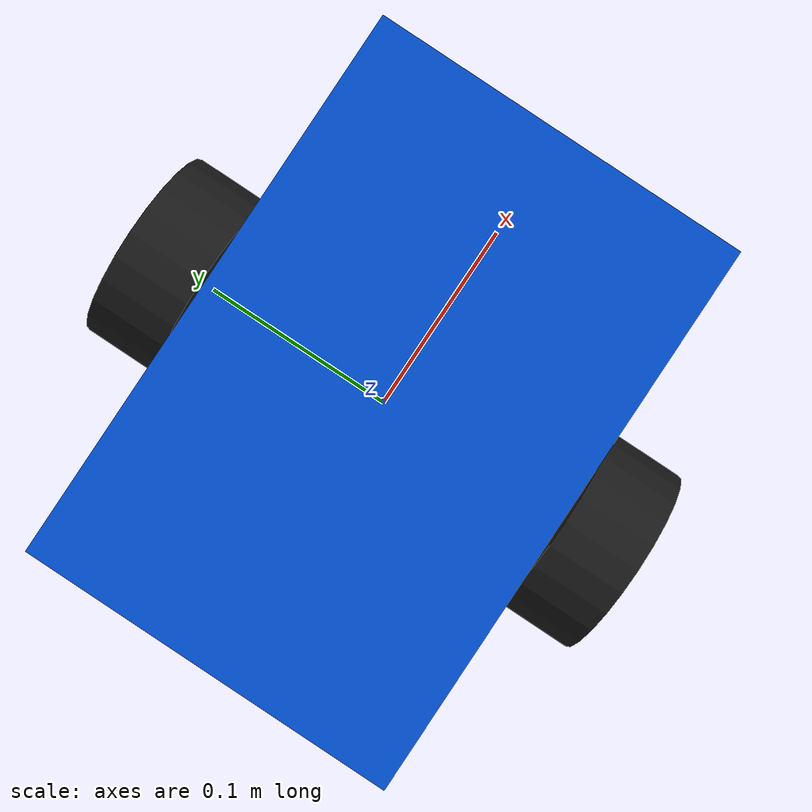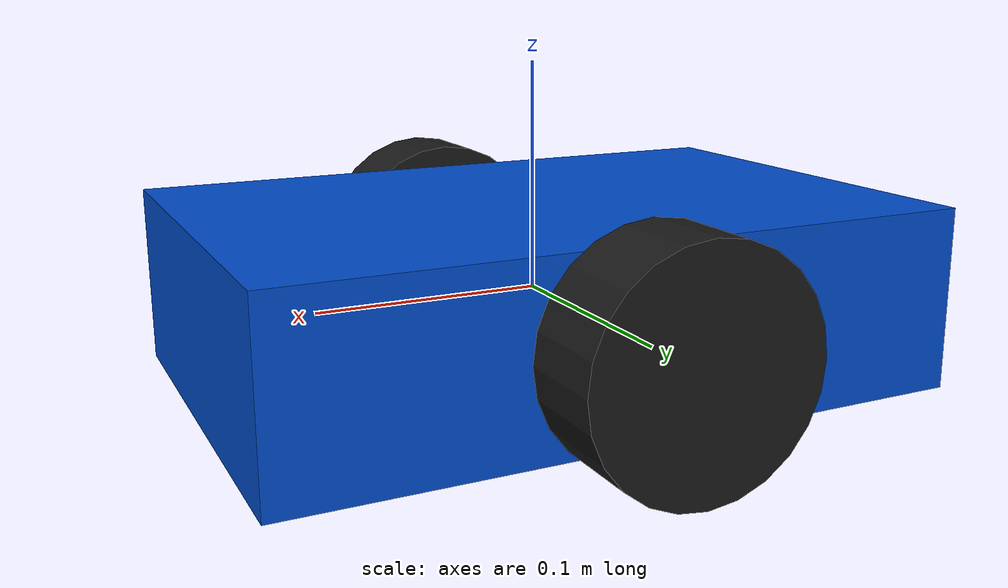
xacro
<?xml version="1.0"?>
<robot name="fosa_mini_robot" xmlns:xacro="http://www.ros.org/wiki/xacro">

  <!-- ===== CONSTANTES ===== -->
  <xacro:property name="chassis_length" value="0.3"/>
  <xacro:property name="chassis_width"  value="0.2"/>
  <xacro:property name="chassis_height" value="0.08"/>
  <xacro:property name="wheel_radius"   value="0.05"/>
  <xacro:property name="wheel_width"    value="0.04"/>
  <xacro:property name="PI"             value="3.14159265"/>

  <!-- ===== CHÂSSIS ===== -->
  <link name="base_link">
    <visual>
      <geometry>
        <box size="${chassis_length} ${chassis_width} ${chassis_height}"/>
      </geometry>
      <material name="blue">
        <color rgba="0.0 0.3 0.8 1.0"/>
      </material>
    </visual>
    <collision>
      <geometry>
        <box size="${chassis_length} ${chassis_width} ${chassis_height}"/>
      </geometry>
    </collision>
    <inertial>
      <mass value="1.0"/>
      <inertia ixx="0.01" ixy="0.0" ixz="0.0"
               iyy="0.01" iyz="0.0" izz="0.02"/>
    </inertial>
  </link>

  <!-- ===== MACRO ROUE ===== -->
  <xacro:macro name="wheel" params="name y_pos">
    <link name="${name}">
      <visual>
        <geometry>
          <cylinder radius="${wheel_radius}" length="${wheel_width}"/>
        </geometry>
        <material name="black">
          <color rgba="0.1 0.1 0.1 1.0"/>
        </material>
      </visual>
      <collision>
        <geometry>
          <cylinder radius="${wheel_radius}" length="${wheel_width}"/>
        </geometry>
      </collision>
      <inertial>
        <mass value="0.2"/>
        <inertia ixx="0.001" ixy="0.0" ixz="0.0"
                 iyy="0.001" iyz="0.0" izz="0.001"/>
      </inertial>
    </link>

    <joint name="${name}_joint" type="continuous">
      <parent link="base_link"/>
      <child  link="${name}"/>
      <origin xyz="0.0 ${y_pos} 0.0" rpy="${PI/2} 0.0 0.0"/>
      <axis xyz="0 0 1"/>
    </joint>
  </xacro:macro>

  <!-- ===== 2 ROUES MOTRICES ===== -->
  <xacro:wheel name="left_wheel"  y_pos=" 0.12"/>
  <xacro:wheel name="right_wheel" y_pos="-0.12"/>

  <!-- ===== ROUE FOLLE ===== -->
  <link name="caster_wheel">
    <visual>
      <geometry>
        <sphere radius="0.03"/>
      </geometry>
      <material name="grey">
        <color rgba="0.5 0.5 0.5 1.0"/>
      </material>
    </visual>
    <collision>
      <geometry>
        <sphere radius="0.03"/>
      </geometry>
    </collision>
    <inertial>
      <mass value="0.1"/>
      <inertia ixx="0.0001" ixy="0.0" ixz="0.0"
               iyy="0.0001" iyz="0.0" izz="0.0001"/>
    </inertial>
  </link>

  <joint name="caster_joint" type="fixed">
    <parent link="base_link"/>
    <child  link="caster_wheel"/>
    <origin xyz="${-chassis_length/2 + 0.05} 0.0 ${-chassis_height/2 - 0.03}"
            rpy="0.0 0.0 0.0"/>
  </joint>

</robot>
